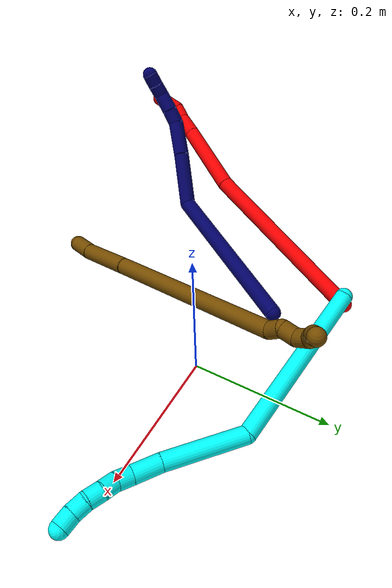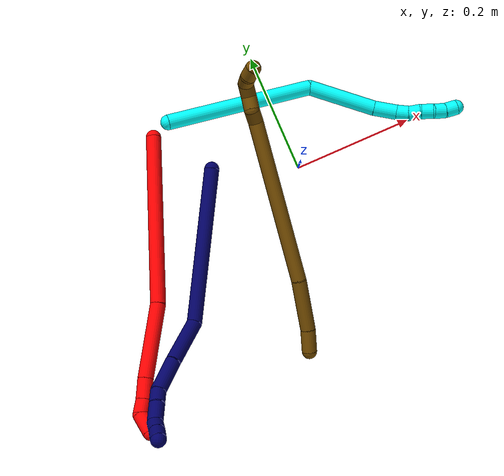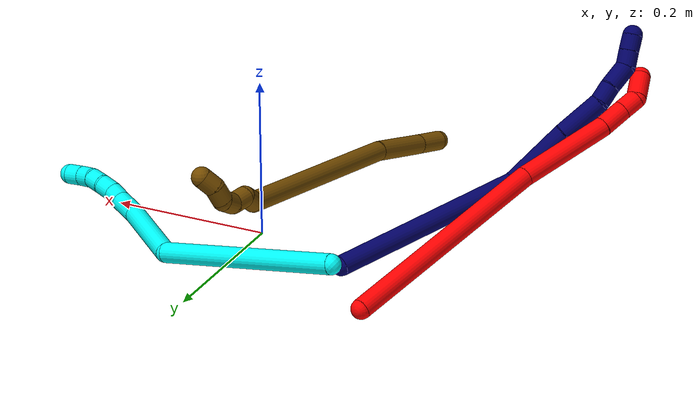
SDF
<sdf version="1.7">
 <world name="default">
  <model name="2">
   <static>0</static>
   <link name="2">
    <collision name="collision-cylinder-e_1_1_4">
     <pose>-0.022684 -0.051345 0.1313 0.372766 -0.159534 -0.030145</pose>
     <geometry><cylinder><radius>0.0125</radius><length>0.28559</length></cylinder></geometry>
     <surface>
      <friction><ode><mu>1.16</mu><mu2>1.16</mu2><slip1>0</slip1><slip2>0</slip2></ode></friction>
      <contact><ode><kp>1e+06</kp><kd>1</kd><max_vel>0</max_vel><min_depth>0.001</min_depth></ode></contact>
     </surface>
    </collision>
    <visual name="visual-cylinder-e_1_1_4">
     <pose>-0.022684 -0.051345 0.1313 0.372766 -0.159534 -0.030145</pose>
     <geometry><cylinder><radius>0.0125</radius><length>0.28559</length></cylinder></geometry>
     <material><ambient>1 0 0 1</ambient></material>
    </visual>
    <collision name="collision-cylinder-e_2_4_5">
     <pose>-0.051687 -0.134677 0.314356 0.553578 -0.103472 -0.029419</pose>
     <geometry><cylinder><radius>0.0125</radius><length>0.122342</length></cylinder></geometry>
     <surface>
      <friction><ode><mu>1.16</mu><mu2>1.16</mu2><slip1>0</slip1><slip2>0</slip2></ode></friction>
      <contact><ode><kp>1e+06</kp><kd>1</kd><max_vel>0</max_vel><min_depth>0.001</min_depth></ode></contact>
     </surface>
    </collision>
    <visual name="visual-cylinder-e_2_4_5">
     <pose>-0.051687 -0.134677 0.314356 0.553578 -0.103472 -0.029419</pose>
     <geometry><cylinder><radius>0.0125</radius><length>0.122342</length></cylinder></geometry>
     <material><ambient>1 0 0 1</ambient></material>
    </visual>
    <collision name="collision-cylinder-e_3_5_6">
     <pose>-0.061734 -0.174829 0.380631 0.512264 -0.220252 -0.057899</pose>
     <geometry><cylinder><radius>0.0125</radius><length>0.034137</length></cylinder></geometry>
     <surface>
      <friction><ode><mu>1.16</mu><mu2>1.16</mu2><slip1>0</slip1><slip2>0</slip2></ode></friction>
      <contact><ode><kp>1e+06</kp><kd>1</kd><max_vel>0</max_vel><min_depth>0.001</min_depth></ode></contact>
     </surface>
    </collision>
    <visual name="visual-cylinder-e_3_5_6">
     <pose>-0.061734 -0.174829 0.380631 0.512264 -0.220252 -0.057899</pose>
     <geometry><cylinder><radius>0.0125</radius><length>0.034137</length></cylinder></geometry>
     <material><ambient>1 0 0 1</ambient></material>
    </visual>
    <collision name="collision-cylinder-e_4_6_7">
     <pose>-0.06829 -0.189865 0.404295 0.644454 -0.242257 -0.081234</pose>
     <geometry><cylinder><radius>0.0125</radius><length>0.023568</length></cylinder></geometry>
     <surface>
      <friction><ode><mu>1.16</mu><mu2>1.16</mu2><slip1>0</slip1><slip2>0</slip2></ode></friction>
      <contact><ode><kp>1e+06</kp><kd>1</kd><max_vel>0</max_vel><min_depth>0.001</min_depth></ode></contact>
     </surface>
    </collision>
    <visual name="visual-cylinder-e_4_6_7">
     <pose>-0.06829 -0.189865 0.404295 0.644454 -0.242257 -0.081234</pose>
     <geometry><cylinder><radius>0.0125</radius><length>0.023568</length></cylinder></geometry>
     <material><ambient>1 0 0 1</ambient></material>
    </visual>
    <collision name="collision-cylinder-e_5_7_2">
     <pose>-0.080766 -0.19669 0.427656 -0.003387 -0.596364 0.001041</pose>
     <geometry><cylinder><radius>0.0125</radius><length>0.034362</length></cylinder></geometry>
     <surface>
      <friction><ode><mu>1.16</mu><mu2>1.16</mu2><slip1>0</slip1><slip2>0</slip2></ode></friction>
      <contact><ode><kp>1e+06</kp><kd>1</kd><max_vel>0</max_vel><min_depth>0.001</min_depth></ode></contact>
     </surface>
    </collision>
    <visual name="visual-cylinder-e_5_7_2">
     <pose>-0.080766 -0.19669 0.427656 -0.003387 -0.596364 0.001041</pose>
     <geometry><cylinder><radius>0.0125</radius><length>0.034362</length></cylinder></geometry>
     <material><ambient>1 0 0 1</ambient></material>
    </visual>
    <collision name="collision-sphere-2">
     <pose>-0.090416 -0.196642 0.441871 0 -0 0</pose>
     <geometry><sphere><radius>0.0125</radius></sphere></geometry>
     <surface>
      <friction><ode><mu>1.16</mu><mu2>1.16</mu2><slip1>0</slip1><slip2>0</slip2></ode></friction>
      <contact><ode><kp>1e+06</kp><kd>1</kd><max_vel>0</max_vel><min_depth>0.001</min_depth></ode></contact>
     </surface>
    </collision>
    <visual name="visual-sphere-2">
     <pose>-0.090416 -0.196642 0.441871 0 -0 0</pose>
     <geometry><sphere><radius>0.0125</radius></sphere></geometry>
     <material><ambient>1 0 0 1</ambient></material>
    </visual>
    <collision name="collision-sphere-7">
     <pose>-0.071117 -0.196738 0.41344 0 -0 0</pose>
     <geometry><sphere><radius>0.0125</radius></sphere></geometry>
     <surface>
      <friction><ode><mu>1.16</mu><mu2>1.16</mu2><slip1>0</slip1><slip2>0</slip2></ode></friction>
      <contact><ode><kp>1e+06</kp><kd>1</kd><max_vel>0</max_vel><min_depth>0.001</min_depth></ode></contact>
     </surface>
    </collision>
    <visual name="visual-sphere-7">
     <pose>-0.071117 -0.196738 0.41344 0 -0 0</pose>
     <geometry><sphere><radius>0.0125</radius></sphere></geometry>
     <material><ambient>1 0 0 1</ambient></material>
    </visual>
    <collision name="collision-sphere-6">
     <pose>-0.065463 -0.182993 0.395149 0 -0 0</pose>
     <geometry><sphere><radius>0.0125</radius></sphere></geometry>
     <surface>
      <friction><ode><mu>1.16</mu><mu2>1.16</mu2><slip1>0</slip1><slip2>0</slip2></ode></friction>
      <contact><ode><kp>1e+06</kp><kd>1</kd><max_vel>0</max_vel><min_depth>0.001</min_depth></ode></contact>
     </surface>
    </collision>
    <visual name="visual-sphere-6">
     <pose>-0.065463 -0.182993 0.395149 0 -0 0</pose>
     <geometry><sphere><radius>0.0125</radius></sphere></geometry>
     <material><ambient>1 0 0 1</ambient></material>
    </visual>
    <collision name="collision-sphere-5">
     <pose>-0.058005 -0.166665 0.366113 0 -0 0</pose>
     <geometry><sphere><radius>0.0125</radius></sphere></geometry>
     <surface>
      <friction><ode><mu>1.16</mu><mu2>1.16</mu2><slip1>0</slip1><slip2>0</slip2></ode></friction>
      <contact><ode><kp>1e+06</kp><kd>1</kd><max_vel>0</max_vel><min_depth>0.001</min_depth></ode></contact>
     </surface>
    </collision>
    <visual name="visual-sphere-5">
     <pose>-0.058005 -0.166665 0.366113 0 -0 0</pose>
     <geometry><sphere><radius>0.0125</radius></sphere></geometry>
     <material><ambient>1 0 0 1</ambient></material>
    </visual>
    <collision name="collision-sphere-1">
     <geometry><sphere><radius>0.0125</radius></sphere></geometry>
     <surface>
      <friction><ode><mu>1.16</mu><mu2>1.16</mu2><slip1>0</slip1><slip2>0</slip2></ode></friction>
      <contact><ode><kp>1e+06</kp><kd>1</kd><max_vel>0</max_vel><min_depth>0.001</min_depth></ode></contact>
     </surface>
    </collision>
    <visual name="visual-sphere-1">
     <geometry><sphere><radius>0.0125</radius></sphere></geometry>
     <material><ambient>1 0 0 1</ambient></material>
    </visual>
    <collision name="collision-sphere-4">
     <pose>-0.045368 -0.102689 0.262599 0 -0 0</pose>
     <geometry><sphere><radius>0.0125</radius></sphere></geometry>
     <surface>
      <friction><ode><mu>1.16</mu><mu2>1.16</mu2><slip1>0</slip1><slip2>0</slip2></ode></friction>
      <contact><ode><kp>1e+06</kp><kd>1</kd><max_vel>0</max_vel><min_depth>0.001</min_depth></ode></contact>
     </surface>
    </collision>
    <visual name="visual-sphere-4">
     <pose>-0.045368 -0.102689 0.262599 0 -0 0</pose>
     <geometry><sphere><radius>0.0125</radius></sphere></geometry>
     <material><ambient>1 0 0 1</ambient></material>
    </visual>
    <inertial>
     <pose>-0.038588 -0.096684 0.226349 0 -0 0</pose>
     <mass>0.5</mass>
     <inertia>
      <ixx>0.002023</ixx>
      <ixy>0</ixy>
      <ixz>0</ixz>
      <iyy>0.001887</iyy>
      <iyz>0</iyz>
      <izz>0.001153</izz>
     </inertia>
    </inertial>
   </link>
   <pose>-0.202894 0.144289 0.011514 -1.64848 1.08418 2.97499</pose>
  </model>
  <model name="3">
   <static>0</static>
   <link name="3">
    <collision name="collision-cylinder-e_1_1_4">
     <pose>0.096482 -0.000642 0.076284 0.008417 0.901764 0.004075</pose>
     <geometry><cylinder><radius>0.0125</radius><length>0.245995</length></cylinder></geometry>
     <surface>
      <friction><ode><mu>1.16</mu><mu2>1.16</mu2><slip1>0</slip1><slip2>0</slip2></ode></friction>
      <contact><ode><kp>1e+06</kp><kd>1</kd><max_vel>0</max_vel><min_depth>0.001</min_depth></ode></contact>
     </surface>
    </collision>
    <visual name="visual-cylinder-e_1_1_4">
     <pose>0.096482 -0.000642 0.076284 0.008417 0.901764 0.004075</pose>
     <geometry><cylinder><radius>0.0125</radius><length>0.245995</length></cylinder></geometry>
     <material><ambient>0.003922 1 0.996078 1</ambient></material>
    </visual>
    <collision name="collision-cylinder-e_2_4_5">
     <pose>0.226203 -0.033844 0.185129 0.785362 0.625242 0.266168</pose>
     <geometry><cylinder><radius>0.0125</radius><length>0.113583</length></cylinder></geometry>
     <surface>
      <friction><ode><mu>1.16</mu><mu2>1.16</mu2><slip1>0</slip1><slip2>0</slip2></ode></friction>
      <contact><ode><kp>1e+06</kp><kd>1</kd><max_vel>0</max_vel><min_depth>0.001</min_depth></ode></contact>
     </surface>
    </collision>
    <visual name="visual-cylinder-e_2_4_5">
     <pose>0.226203 -0.033844 0.185129 0.785362 0.625242 0.266168</pose>
     <geometry><cylinder><radius>0.0125</radius><length>0.113583</length></cylinder></geometry>
     <material><ambient>0.003922 1 0.996078 1</ambient></material>
    </visual>
    <collision name="collision-cylinder-e_3_5_6">
     <pose>0.270603 -0.075603 0.230604 0.619013 0.613336 0.201836</pose>
     <geometry><cylinder><radius>0.0125</radius><length>0.038778</length></cylinder></geometry>
     <surface>
      <friction><ode><mu>1.16</mu><mu2>1.16</mu2><slip1>0</slip1><slip2>0</slip2></ode></friction>
      <contact><ode><kp>1e+06</kp><kd>1</kd><max_vel>0</max_vel><min_depth>0.001</min_depth></ode></contact>
     </surface>
    </collision>
    <visual name="visual-cylinder-e_3_5_6">
     <pose>0.270603 -0.075603 0.230604 0.619013 0.613336 0.201836</pose>
     <geometry><cylinder><radius>0.0125</radius><length>0.038778</length></cylinder></geometry>
     <material><ambient>0.003922 1 0.996078 1</ambient></material>
    </visual>
    <collision name="collision-cylinder-e_4_6_7">
     <pose>0.286749 -0.089472 0.251721 0.517448 0.485894 0.130998</pose>
     <geometry><cylinder><radius>0.0125</radius><length>0.02135</length></cylinder></geometry>
     <surface>
      <friction><ode><mu>1.16</mu><mu2>1.16</mu2><slip1>0</slip1><slip2>0</slip2></ode></friction>
      <contact><ode><kp>1e+06</kp><kd>1</kd><max_vel>0</max_vel><min_depth>0.001</min_depth></ode></contact>
     </surface>
    </collision>
    <visual name="visual-cylinder-e_4_6_7">
     <pose>0.286749 -0.089472 0.251721 0.517448 0.485894 0.130998</pose>
     <geometry><cylinder><radius>0.0125</radius><length>0.02135</length></cylinder></geometry>
     <material><ambient>0.003922 1 0.996078 1</ambient></material>
    </visual>
    <collision name="collision-cylinder-e_5_7_8">
     <pose>0.29616 -0.096088 0.268713 0.218029 0.456961 0.050892</pose>
     <geometry><cylinder><radius>0.0125</radius><length>0.02006</length></cylinder></geometry>
     <surface>
      <friction><ode><mu>1.16</mu><mu2>1.16</mu2><slip1>0</slip1><slip2>0</slip2></ode></friction>
      <contact><ode><kp>1e+06</kp><kd>1</kd><max_vel>0</max_vel><min_depth>0.001</min_depth></ode></contact>
     </surface>
    </collision>
    <visual name="visual-cylinder-e_5_7_8">
     <pose>0.29616 -0.096088 0.268713 0.218029 0.456961 0.050892</pose>
     <geometry><cylinder><radius>0.0125</radius><length>0.02006</length></cylinder></geometry>
     <material><ambient>0.003922 1 0.996078 1</ambient></material>
    </visual>
    <collision name="collision-cylinder-e_6_8_9">
     <pose>0.306447 -0.101064 0.285089 0.379769 0.622323 0.123469</pose>
     <geometry><cylinder><radius>0.0125</radius><length>0.020112</length></cylinder></geometry>
     <surface>
      <friction><ode><mu>1.16</mu><mu2>1.16</mu2><slip1>0</slip1><slip2>0</slip2></ode></friction>
      <contact><ode><kp>1e+06</kp><kd>1</kd><max_vel>0</max_vel><min_depth>0.001</min_depth></ode></contact>
     </surface>
    </collision>
    <visual name="visual-cylinder-e_6_8_9">
     <pose>0.306447 -0.101064 0.285089 0.379769 0.622323 0.123469</pose>
     <geometry><cylinder><radius>0.0125</radius><length>0.020112</length></cylinder></geometry>
     <material><ambient>0.003922 1 0.996078 1</ambient></material>
    </visual>
    <collision name="collision-cylinder-e_7_9_10">
     <pose>0.320039 -0.106099 0.298788 0.317196 0.876863 0.149702</pose>
     <geometry><cylinder><radius>0.0125</radius><length>0.020112</length></cylinder></geometry>
     <surface>
      <friction><ode><mu>1.16</mu><mu2>1.16</mu2><slip1>0</slip1><slip2>0</slip2></ode></friction>
      <contact><ode><kp>1e+06</kp><kd>1</kd><max_vel>0</max_vel><min_depth>0.001</min_depth></ode></contact>
     </surface>
    </collision>
    <visual name="visual-cylinder-e_7_9_10">
     <pose>0.320039 -0.106099 0.298788 0.317196 0.876863 0.149702</pose>
     <geometry><cylinder><radius>0.0125</radius><length>0.020112</length></cylinder></geometry>
     <material><ambient>0.003922 1 0.996078 1</ambient></material>
    </visual>
    <collision name="collision-cylinder-e_8_10_2">
     <pose>0.334935 -0.108042 0.311881 -0.0091 0.798374 -0.003839</pose>
     <geometry><cylinder><radius>0.0125</radius><length>0.02001</length></cylinder></geometry>
     <surface>
      <friction><ode><mu>1.16</mu><mu2>1.16</mu2><slip1>0</slip1><slip2>0</slip2></ode></friction>
      <contact><ode><kp>1e+06</kp><kd>1</kd><max_vel>0</max_vel><min_depth>0.001</min_depth></ode></contact>
     </surface>
    </collision>
    <visual name="visual-cylinder-e_8_10_2">
     <pose>0.334935 -0.108042 0.311881 -0.0091 0.798374 -0.003839</pose>
     <geometry><cylinder><radius>0.0125</radius><length>0.02001</length></cylinder></geometry>
     <material><ambient>0.003922 1 0.996078 1</ambient></material>
    </visual>
    <collision name="collision-sphere-2">
     <pose>0.342101 -0.107978 0.318863 0 -0 0</pose>
     <geometry><sphere><radius>0.0125</radius></sphere></geometry>
     <surface>
      <friction><ode><mu>1.16</mu><mu2>1.16</mu2><slip1>0</slip1><slip2>0</slip2></ode></friction>
      <contact><ode><kp>1e+06</kp><kd>1</kd><max_vel>0</max_vel><min_depth>0.001</min_depth></ode></contact>
     </surface>
    </collision>
    <visual name="visual-sphere-2">
     <pose>0.342101 -0.107978 0.318863 0 -0 0</pose>
     <geometry><sphere><radius>0.0125</radius></sphere></geometry>
     <material><ambient>0.003922 1 0.996078 1</ambient></material>
    </visual>
    <collision name="collision-sphere-10">
     <pose>0.32777 -0.108105 0.304899 0 -0 0</pose>
     <geometry><sphere><radius>0.0125</radius></sphere></geometry>
     <surface>
      <friction><ode><mu>1.16</mu><mu2>1.16</mu2><slip1>0</slip1><slip2>0</slip2></ode></friction>
      <contact><ode><kp>1e+06</kp><kd>1</kd><max_vel>0</max_vel><min_depth>0.001</min_depth></ode></contact>
     </surface>
    </collision>
    <visual name="visual-sphere-10">
     <pose>0.32777 -0.108105 0.304899 0 -0 0</pose>
     <geometry><sphere><radius>0.0125</radius></sphere></geometry>
     <material><ambient>0.003922 1 0.996078 1</ambient></material>
    </visual>
    <collision name="collision-sphere-9">
     <pose>0.312309 -0.104093 0.292678 0 -0 0</pose>
     <geometry><sphere><radius>0.0125</radius></sphere></geometry>
     <surface>
      <friction><ode><mu>1.16</mu><mu2>1.16</mu2><slip1>0</slip1><slip2>0</slip2></ode></friction>
      <contact><ode><kp>1e+06</kp><kd>1</kd><max_vel>0</max_vel><min_depth>0.001</min_depth></ode></contact>
     </surface>
    </collision>
    <visual name="visual-sphere-9">
     <pose>0.312309 -0.104093 0.292678 0 -0 0</pose>
     <geometry><sphere><radius>0.0125</radius></sphere></geometry>
     <material><ambient>0.003922 1 0.996078 1</ambient></material>
    </visual>
    <collision name="collision-sphere-4">
     <pose>0.192964 -0.001284 0.152567 0 -0 0</pose>
     <geometry><sphere><radius>0.0125</radius></sphere></geometry>
     <surface>
      <friction><ode><mu>1.16</mu><mu2>1.16</mu2><slip1>0</slip1><slip2>0</slip2></ode></friction>
      <contact><ode><kp>1e+06</kp><kd>1</kd><max_vel>0</max_vel><min_depth>0.001</min_depth></ode></contact>
     </surface>
    </collision>
    <visual name="visual-sphere-4">
     <pose>0.192964 -0.001284 0.152567 0 -0 0</pose>
     <geometry><sphere><radius>0.0125</radius></sphere></geometry>
     <material><ambient>0.003922 1 0.996078 1</ambient></material>
    </visual>
    <collision name="collision-sphere-1">
     <geometry><sphere><radius>0.0125</radius></sphere></geometry>
     <surface>
      <friction><ode><mu>1.16</mu><mu2>1.16</mu2><slip1>0</slip1><slip2>0</slip2></ode></friction>
      <contact><ode><kp>1e+06</kp><kd>1</kd><max_vel>0</max_vel><min_depth>0.001</min_depth></ode></contact>
     </surface>
    </collision>
    <visual name="visual-sphere-1">
     <geometry><sphere><radius>0.0125</radius></sphere></geometry>
     <material><ambient>0.003922 1 0.996078 1</ambient></material>
    </visual>
    <collision name="collision-sphere-8">
     <pose>0.300585 -0.098035 0.2775 0 -0 0</pose>
     <geometry><sphere><radius>0.0125</radius></sphere></geometry>
     <surface>
      <friction><ode><mu>1.16</mu><mu2>1.16</mu2><slip1>0</slip1><slip2>0</slip2></ode></friction>
      <contact><ode><kp>1e+06</kp><kd>1</kd><max_vel>0</max_vel><min_depth>0.001</min_depth></ode></contact>
     </surface>
    </collision>
    <visual name="visual-sphere-8">
     <pose>0.300585 -0.098035 0.2775 0 -0 0</pose>
     <geometry><sphere><radius>0.0125</radius></sphere></geometry>
     <material><ambient>0.003922 1 0.996078 1</ambient></material>
    </visual>
    <collision name="collision-sphere-5">
     <pose>0.259443 -0.066403 0.217691 0 -0 0</pose>
     <geometry><sphere><radius>0.0125</radius></sphere></geometry>
     <surface>
      <friction><ode><mu>1.16</mu><mu2>1.16</mu2><slip1>0</slip1><slip2>0</slip2></ode></friction>
      <contact><ode><kp>1e+06</kp><kd>1</kd><max_vel>0</max_vel><min_depth>0.001</min_depth></ode></contact>
     </surface>
    </collision>
    <visual name="visual-sphere-5">
     <pose>0.259443 -0.066403 0.217691 0 -0 0</pose>
     <geometry><sphere><radius>0.0125</radius></sphere></geometry>
     <material><ambient>0.003922 1 0.996078 1</ambient></material>
    </visual>
    <collision name="collision-sphere-6">
     <pose>0.281764 -0.084803 0.243518 0 -0 0</pose>
     <geometry><sphere><radius>0.0125</radius></sphere></geometry>
     <surface>
      <friction><ode><mu>1.16</mu><mu2>1.16</mu2><slip1>0</slip1><slip2>0</slip2></ode></friction>
      <contact><ode><kp>1e+06</kp><kd>1</kd><max_vel>0</max_vel><min_depth>0.001</min_depth></ode></contact>
     </surface>
    </collision>
    <visual name="visual-sphere-6">
     <pose>0.281764 -0.084803 0.243518 0 -0 0</pose>
     <geometry><sphere><radius>0.0125</radius></sphere></geometry>
     <material><ambient>0.003922 1 0.996078 1</ambient></material>
    </visual>
    <collision name="collision-sphere-7">
     <pose>0.291734 -0.094141 0.259925 0 -0 0</pose>
     <geometry><sphere><radius>0.0125</radius></sphere></geometry>
     <surface>
      <friction><ode><mu>1.16</mu><mu2>1.16</mu2><slip1>0</slip1><slip2>0</slip2></ode></friction>
      <contact><ode><kp>1e+06</kp><kd>1</kd><max_vel>0</max_vel><min_depth>0.001</min_depth></ode></contact>
     </surface>
    </collision>
    <visual name="visual-sphere-7">
     <pose>0.291734 -0.094141 0.259925 0 -0 0</pose>
     <geometry><sphere><radius>0.0125</radius></sphere></geometry>
     <material><ambient>0.003922 1 0.996078 1</ambient></material>
    </visual>
    <inertial>
     <pose>0.182571 -0.0342 0.154967 0 -0 0</pose>
     <mass>0.5</mass>
     <inertia>
      <ixx>0.000944</ixx>
      <ixy>0</ixy>
      <ixz>0</ixz>
      <iyy>0.001386</iyy>
      <iyz>0</iyz>
      <izz>-0.000954</izz>
     </inertia>
    </inertial>
   </link>
   <pose>-0.167415 0.150552 0.064113 -0.250543 0.872707 -0.298159</pose>
  </model>
  <model name="7">
   <static>0</static>
   <link name="7">
    <collision name="collision-cylinder-e_1_1_4">
     <pose>-0.003367 0.001512 0.129597 -0.011663 -0.025973 0.000151</pose>
     <geometry><cylinder><radius>0.0125</radius><length>0.259299</length></cylinder></geometry>
     <surface>
      <friction><ode><mu>1.16</mu><mu2>1.16</mu2><slip1>0</slip1><slip2>0</slip2></ode></friction>
      <contact><ode><kp>1e+06</kp><kd>1</kd><max_vel>0</max_vel><min_depth>0.001</min_depth></ode></contact>
     </surface>
    </collision>
    <visual name="visual-cylinder-e_1_1_4">
     <pose>-0.003367 0.001512 0.129597 -0.011663 -0.025973 0.000151</pose>
     <geometry><cylinder><radius>0.0125</radius><length>0.259299</length></cylinder></geometry>
     <material><ambient>0.003922 0 0.403922 1</ambient></material>
    </visual>
    <collision name="collision-cylinder-e_2_4_5">
     <pose>-0.018588 -0.021654 0.29294 0.631401 -0.276287 -0.090758</pose>
     <geometry><cylinder><radius>0.0125</radius><length>0.086909</length></cylinder></geometry>
     <surface>
      <friction><ode><mu>1.16</mu><mu2>1.16</mu2><slip1>0</slip1><slip2>0</slip2></ode></friction>
      <contact><ode><kp>1e+06</kp><kd>1</kd><max_vel>0</max_vel><min_depth>0.001</min_depth></ode></contact>
     </surface>
    </collision>
    <visual name="visual-cylinder-e_2_4_5">
     <pose>-0.018588 -0.021654 0.29294 0.631401 -0.276287 -0.090758</pose>
     <geometry><cylinder><radius>0.0125</radius><length>0.086909</length></cylinder></geometry>
     <material><ambient>0.003922 0 0.403922 1</ambient></material>
    </visual>
    <collision name="collision-cylinder-e_3_5_6">
     <pose>-0.036848 -0.061151 0.35077 0.551631 -0.222774 -0.063292</pose>
     <geometry><cylinder><radius>0.0125</radius><length>0.057988</length></cylinder></geometry>
     <surface>
      <friction><ode><mu>1.16</mu><mu2>1.16</mu2><slip1>0</slip1><slip2>0</slip2></ode></friction>
      <contact><ode><kp>1e+06</kp><kd>1</kd><max_vel>0</max_vel><min_depth>0.001</min_depth></ode></contact>
     </surface>
    </collision>
    <visual name="visual-cylinder-e_3_5_6">
     <pose>-0.036848 -0.061151 0.35077 0.551631 -0.222774 -0.063292</pose>
     <geometry><cylinder><radius>0.0125</radius><length>0.057988</length></cylinder></geometry>
     <material><ambient>0.003922 0 0.403922 1</ambient></material>
    </visual>
    <collision name="collision-cylinder-e_4_6_7">
     <pose>-0.049164 -0.07975 0.384415 0.37633 -0.521751 -0.10158</pose>
     <geometry><cylinder><radius>0.0125</radius><length>0.023718</length></cylinder></geometry>
     <surface>
      <friction><ode><mu>1.16</mu><mu2>1.16</mu2><slip1>0</slip1><slip2>0</slip2></ode></friction>
      <contact><ode><kp>1e+06</kp><kd>1</kd><max_vel>0</max_vel><min_depth>0.001</min_depth></ode></contact>
     </surface>
    </collision>
    <visual name="visual-cylinder-e_4_6_7">
     <pose>-0.049164 -0.07975 0.384415 0.37633 -0.521751 -0.10158</pose>
     <geometry><cylinder><radius>0.0125</radius><length>0.023718</length></cylinder></geometry>
     <material><ambient>0.003922 0 0.403922 1</ambient></material>
    </visual>
    <collision name="collision-cylinder-e_5_7_8">
     <pose>-0.061614 -0.087565 0.407863 0.282916 -0.424676 -0.061384</pose>
     <geometry><cylinder><radius>0.0125</radius><length>0.031741</length></cylinder></geometry>
     <surface>
      <friction><ode><mu>1.16</mu><mu2>1.16</mu2><slip1>0</slip1><slip2>0</slip2></ode></friction>
      <contact><ode><kp>1e+06</kp><kd>1</kd><max_vel>0</max_vel><min_depth>0.001</min_depth></ode></contact>
     </surface>
    </collision>
    <visual name="visual-cylinder-e_5_7_8">
     <pose>-0.061614 -0.087565 0.407863 0.282916 -0.424676 -0.061384</pose>
     <geometry><cylinder><radius>0.0125</radius><length>0.031741</length></cylinder></geometry>
     <material><ambient>0.003922 0 0.403922 1</ambient></material>
    </visual>
    <collision name="collision-cylinder-e_6_8_9">
     <pose>-0.07602 -0.094399 0.427369 0.461763 -0.897251 -0.225352</pose>
     <geometry><cylinder><radius>0.0125</radius><length>0.020131</length></cylinder></geometry>
     <surface>
      <friction><ode><mu>1.16</mu><mu2>1.16</mu2><slip1>0</slip1><slip2>0</slip2></ode></friction>
      <contact><ode><kp>1e+06</kp><kd>1</kd><max_vel>0</max_vel><min_depth>0.001</min_depth></ode></contact>
     </surface>
    </collision>
    <visual name="visual-cylinder-e_6_8_9">
     <pose>-0.07602 -0.094399 0.427369 0.461763 -0.897251 -0.225352</pose>
     <geometry><cylinder><radius>0.0125</radius><length>0.020131</length></cylinder></geometry>
     <material><ambient>0.003922 0 0.403922 1</ambient></material>
    </visual>
    <collision name="collision-cylinder-e_7_9_2">
     <pose>-0.09153 -0.10038 0.438786 0.502414 -0.857561 -0.233565</pose>
     <geometry><cylinder><radius>0.0125</radius><length>0.020213</length></cylinder></geometry>
     <surface>
      <friction><ode><mu>1.16</mu><mu2>1.16</mu2><slip1>0</slip1><slip2>0</slip2></ode></friction>
      <contact><ode><kp>1e+06</kp><kd>1</kd><max_vel>0</max_vel><min_depth>0.001</min_depth></ode></contact>
     </surface>
    </collision>
    <visual name="visual-cylinder-e_7_9_2">
     <pose>-0.09153 -0.10038 0.438786 0.502414 -0.857561 -0.233565</pose>
     <geometry><cylinder><radius>0.0125</radius><length>0.020213</length></cylinder></geometry>
     <material><ambient>0.003922 0 0.403922 1</ambient></material>
    </visual>
    <collision name="collision-sphere-2">
     <pose>-0.099174 -0.103565 0.444581 0 -0 0</pose>
     <geometry><sphere><radius>0.0125</radius></sphere></geometry>
     <surface>
      <friction><ode><mu>1.16</mu><mu2>1.16</mu2><slip1>0</slip1><slip2>0</slip2></ode></friction>
      <contact><ode><kp>1e+06</kp><kd>1</kd><max_vel>0</max_vel><min_depth>0.001</min_depth></ode></contact>
     </surface>
    </collision>
    <visual name="visual-sphere-2">
     <pose>-0.099174 -0.103565 0.444581 0 -0 0</pose>
     <geometry><sphere><radius>0.0125</radius></sphere></geometry>
     <material><ambient>0.003922 0 0.403922 1</ambient></material>
    </visual>
    <collision name="collision-sphere-9">
     <pose>-0.083887 -0.097196 0.43299 0 -0 0</pose>
     <geometry><sphere><radius>0.0125</radius></sphere></geometry>
     <surface>
      <friction><ode><mu>1.16</mu><mu2>1.16</mu2><slip1>0</slip1><slip2>0</slip2></ode></friction>
      <contact><ode><kp>1e+06</kp><kd>1</kd><max_vel>0</max_vel><min_depth>0.001</min_depth></ode></contact>
     </surface>
    </collision>
    <visual name="visual-sphere-9">
     <pose>-0.083887 -0.097196 0.43299 0 -0 0</pose>
     <geometry><sphere><radius>0.0125</radius></sphere></geometry>
     <material><ambient>0.003922 0 0.403922 1</ambient></material>
    </visual>
    <collision name="collision-sphere-4">
     <pose>-0.006734 0.003023 0.259194 0 -0 0</pose>
     <geometry><sphere><radius>0.0125</radius></sphere></geometry>
     <surface>
      <friction><ode><mu>1.16</mu><mu2>1.16</mu2><slip1>0</slip1><slip2>0</slip2></ode></friction>
      <contact><ode><kp>1e+06</kp><kd>1</kd><max_vel>0</max_vel><min_depth>0.001</min_depth></ode></contact>
     </surface>
    </collision>
    <visual name="visual-sphere-4">
     <pose>-0.006734 0.003023 0.259194 0 -0 0</pose>
     <geometry><sphere><radius>0.0125</radius></sphere></geometry>
     <material><ambient>0.003922 0 0.403922 1</ambient></material>
    </visual>
    <collision name="collision-sphere-1">
     <geometry><sphere><radius>0.0125</radius></sphere></geometry>
     <surface>
      <friction><ode><mu>1.16</mu><mu2>1.16</mu2><slip1>0</slip1><slip2>0</slip2></ode></friction>
      <contact><ode><kp>1e+06</kp><kd>1</kd><max_vel>0</max_vel><min_depth>0.001</min_depth></ode></contact>
     </surface>
    </collision>
    <visual name="visual-sphere-1">
     <geometry><sphere><radius>0.0125</radius></sphere></geometry>
     <material><ambient>0.003922 0 0.403922 1</ambient></material>
    </visual>
    <collision name="collision-sphere-8">
     <pose>-0.068153 -0.091602 0.421748 0 -0 0</pose>
     <geometry><sphere><radius>0.0125</radius></sphere></geometry>
     <surface>
      <friction><ode><mu>1.16</mu><mu2>1.16</mu2><slip1>0</slip1><slip2>0</slip2></ode></friction>
      <contact><ode><kp>1e+06</kp><kd>1</kd><max_vel>0</max_vel><min_depth>0.001</min_depth></ode></contact>
     </surface>
    </collision>
    <visual name="visual-sphere-8">
     <pose>-0.068153 -0.091602 0.421748 0 -0 0</pose>
     <geometry><sphere><radius>0.0125</radius></sphere></geometry>
     <material><ambient>0.003922 0 0.403922 1</ambient></material>
    </visual>
    <collision name="collision-sphere-5">
     <pose>-0.030442 -0.046332 0.326687 0 -0 0</pose>
     <geometry><sphere><radius>0.0125</radius></sphere></geometry>
     <surface>
      <friction><ode><mu>1.16</mu><mu2>1.16</mu2><slip1>0</slip1><slip2>0</slip2></ode></friction>
      <contact><ode><kp>1e+06</kp><kd>1</kd><max_vel>0</max_vel><min_depth>0.001</min_depth></ode></contact>
     </surface>
    </collision>
    <visual name="visual-sphere-5">
     <pose>-0.030442 -0.046332 0.326687 0 -0 0</pose>
     <geometry><sphere><radius>0.0125</radius></sphere></geometry>
     <material><ambient>0.003922 0 0.403922 1</ambient></material>
    </visual>
    <collision name="collision-sphere-6">
     <pose>-0.043253 -0.075971 0.374853 0 -0 0</pose>
     <geometry><sphere><radius>0.0125</radius></sphere></geometry>
     <surface>
      <friction><ode><mu>1.16</mu><mu2>1.16</mu2><slip1>0</slip1><slip2>0</slip2></ode></friction>
      <contact><ode><kp>1e+06</kp><kd>1</kd><max_vel>0</max_vel><min_depth>0.001</min_depth></ode></contact>
     </surface>
    </collision>
    <visual name="visual-sphere-6">
     <pose>-0.043253 -0.075971 0.374853 0 -0 0</pose>
     <geometry><sphere><radius>0.0125</radius></sphere></geometry>
     <material><ambient>0.003922 0 0.403922 1</ambient></material>
    </visual>
    <collision name="collision-sphere-7">
     <pose>-0.055075 -0.083528 0.393977 0 -0 0</pose>
     <geometry><sphere><radius>0.0125</radius></sphere></geometry>
     <surface>
      <friction><ode><mu>1.16</mu><mu2>1.16</mu2><slip1>0</slip1><slip2>0</slip2></ode></friction>
      <contact><ode><kp>1e+06</kp><kd>1</kd><max_vel>0</max_vel><min_depth>0.001</min_depth></ode></contact>
     </surface>
    </collision>
    <visual name="visual-sphere-7">
     <pose>-0.055075 -0.083528 0.393977 0 -0 0</pose>
     <geometry><sphere><radius>0.0125</radius></sphere></geometry>
     <material><ambient>0.003922 0 0.403922 1</ambient></material>
    </visual>
    <inertial>
     <pose>-0.022255 -0.027273 0.237881 0 -0 0</pose>
     <mass>0.5</mass>
     <inertia>
      <ixx>0.001529</ixx>
      <ixy>0</ixy>
      <ixz>0</ixz>
      <iyy>0.00152</iyy>
      <iyz>0</iyz>
      <izz>0.000125</izz>
     </inertia>
    </inertial>
   </link>
   <pose>-0.134881 0.056171 0.011499 -1.35029 0.844822 2.76592</pose>
  </model>
  <model name="12">
   <static>0</static>
   <link name="12">
    <collision name="collision-cylinder-e_1_1_4">
     <pose>0.004065 0.018212 0.003807 -1.36475 0.215089 -0.175009</pose>
     <geometry><cylinder><radius>0.0125</radius><length>0.038088</length></cylinder></geometry>
     <surface>
      <friction><ode><mu>1.16</mu><mu2>1.16</mu2><slip1>0</slip1><slip2>0</slip2></ode></friction>
      <contact><ode><kp>1e+06</kp><kd>1</kd><max_vel>0</max_vel><min_depth>0.001</min_depth></ode></contact>
     </surface>
    </collision>
    <visual name="visual-cylinder-e_1_1_4">
     <pose>0.004065 0.018212 0.003807 -1.36475 0.215089 -0.175009</pose>
     <geometry><cylinder><radius>0.0125</radius><length>0.038088</length></cylinder></geometry>
     <material><ambient>0.466667 0.301961 0 1</ambient></material>
    </visual>
    <collision name="collision-cylinder-e_2_4_5">
     <pose>0.012264 0.077801 0.018213 -1.32001 0.096507 -0.074923</pose>
     <geometry><cylinder><radius>0.0125</radius><length>0.085826</length></cylinder></geometry>
     <surface>
      <friction><ode><mu>1.16</mu><mu2>1.16</mu2><slip1>0</slip1><slip2>0</slip2></ode></friction>
      <contact><ode><kp>1e+06</kp><kd>1</kd><max_vel>0</max_vel><min_depth>0.001</min_depth></ode></contact>
     </surface>
    </collision>
    <visual name="visual-cylinder-e_2_4_5">
     <pose>0.012264 0.077801 0.018213 -1.32001 0.096507 -0.074923</pose>
     <geometry><cylinder><radius>0.0125</radius><length>0.085826</length></cylinder></geometry>
     <material><ambient>0.466667 0.301961 0 1</ambient></material>
    </visual>
    <collision name="collision-cylinder-e_3_5_6">
     <pose>0.020412 0.25174 0.046914 -1.43509 0.029983 -0.026168</pose>
     <geometry><cylinder><radius>0.0125</radius><length>0.267705</length></cylinder></geometry>
     <surface>
      <friction><ode><mu>1.16</mu><mu2>1.16</mu2><slip1>0</slip1><slip2>0</slip2></ode></friction>
      <contact><ode><kp>1e+06</kp><kd>1</kd><max_vel>0</max_vel><min_depth>0.001</min_depth></ode></contact>
     </surface>
    </collision>
    <visual name="visual-cylinder-e_3_5_6">
     <pose>0.020412 0.25174 0.046914 -1.43509 0.029983 -0.026168</pose>
     <geometry><cylinder><radius>0.0125</radius><length>0.267705</length></cylinder></geometry>
     <material><ambient>0.466667 0.301961 0 1</ambient></material>
    </visual>
    <collision name="collision-cylinder-e_4_6_7">
     <pose>0.02358 0.393628 0.072585 -0.888853 -0.070169 0.033425</pose>
     <geometry><cylinder><radius>0.0125</radius><length>0.024084</length></cylinder></geometry>
     <surface>
      <friction><ode><mu>1.16</mu><mu2>1.16</mu2><slip1>0</slip1><slip2>0</slip2></ode></friction>
      <contact><ode><kp>1e+06</kp><kd>1</kd><max_vel>0</max_vel><min_depth>0.001</min_depth></ode></contact>
     </surface>
    </collision>
    <visual name="visual-cylinder-e_4_6_7">
     <pose>0.02358 0.393628 0.072585 -0.888853 -0.070169 0.033425</pose>
     <geometry><cylinder><radius>0.0125</radius><length>0.024084</length></cylinder></geometry>
     <material><ambient>0.466667 0.301961 0 1</ambient></material>
    </visual>
    <collision name="collision-cylinder-e_5_7_8">
     <pose>0.023786 0.413982 0.079751 -1.60755 0.094855 -0.098402</pose>
     <geometry><cylinder><radius>0.0125</radius><length>0.02217</length></cylinder></geometry>
     <surface>
      <friction><ode><mu>1.16</mu><mu2>1.16</mu2><slip1>0</slip1><slip2>0</slip2></ode></friction>
      <contact><ode><kp>1e+06</kp><kd>1</kd><max_vel>0</max_vel><min_depth>0.001</min_depth></ode></contact>
     </surface>
    </collision>
    <visual name="visual-cylinder-e_5_7_8">
     <pose>0.023786 0.413982 0.079751 -1.60755 0.094855 -0.098402</pose>
     <geometry><cylinder><radius>0.0125</radius><length>0.02217</length></cylinder></geometry>
     <material><ambient>0.466667 0.301961 0 1</ambient></material>
    </visual>
    <collision name="collision-cylinder-e_6_8_9">
     <pose>0.024842 0.434427 0.08505 -1.02624 0.000551 -0.000311</pose>
     <geometry><cylinder><radius>0.0125</radius><length>0.02202</length></cylinder></geometry>
     <surface>
      <friction><ode><mu>1.16</mu><mu2>1.16</mu2><slip1>0</slip1><slip2>0</slip2></ode></friction>
      <contact><ode><kp>1e+06</kp><kd>1</kd><max_vel>0</max_vel><min_depth>0.001</min_depth></ode></contact>
     </surface>
    </collision>
    <visual name="visual-cylinder-e_6_8_9">
     <pose>0.024842 0.434427 0.08505 -1.02624 0.000551 -0.000311</pose>
     <geometry><cylinder><radius>0.0125</radius><length>0.02202</length></cylinder></geometry>
     <material><ambient>0.466667 0.301961 0 1</ambient></material>
    </visual>
    <collision name="collision-cylinder-e_7_9_10">
     <pose>0.027338 0.447019 0.09995 -0.332381 0.250602 -0.042251</pose>
     <geometry><cylinder><radius>0.0125</radius><length>0.020086</length></cylinder></geometry>
     <surface>
      <friction><ode><mu>1.16</mu><mu2>1.16</mu2><slip1>0</slip1><slip2>0</slip2></ode></friction>
      <contact><ode><kp>1e+06</kp><kd>1</kd><max_vel>0</max_vel><min_depth>0.001</min_depth></ode></contact>
     </surface>
    </collision>
    <visual name="visual-cylinder-e_7_9_10">
     <pose>0.027338 0.447019 0.09995 -0.332381 0.250602 -0.042251</pose>
     <geometry><cylinder><radius>0.0125</radius><length>0.020086</length></cylinder></geometry>
     <material><ambient>0.466667 0.301961 0 1</ambient></material>
    </visual>
    <collision name="collision-cylinder-e_8_10_2">
     <pose>0.035092 0.4546 0.116433 -0.543856 0.553654 -0.158116</pose>
     <geometry><cylinder><radius>0.0125</radius><length>0.020021</length></cylinder></geometry>
     <surface>
      <friction><ode><mu>1.16</mu><mu2>1.16</mu2><slip1>0</slip1><slip2>0</slip2></ode></friction>
      <contact><ode><kp>1e+06</kp><kd>1</kd><max_vel>0</max_vel><min_depth>0.001</min_depth></ode></contact>
     </surface>
    </collision>
    <visual name="visual-cylinder-e_8_10_2">
     <pose>0.035092 0.4546 0.116433 -0.543856 0.553654 -0.158116</pose>
     <geometry><cylinder><radius>0.0125</radius><length>0.020021</length></cylinder></geometry>
     <material><ambient>0.466667 0.301961 0 1</ambient></material>
    </visual>
    <collision name="collision-sphere-2">
     <pose>0.040356 0.459006 0.123719 0 -0 0</pose>
     <geometry><sphere><radius>0.0125</radius></sphere></geometry>
     <surface>
      <friction><ode><mu>1.16</mu><mu2>1.16</mu2><slip1>0</slip1><slip2>0</slip2></ode></friction>
      <contact><ode><kp>1e+06</kp><kd>1</kd><max_vel>0</max_vel><min_depth>0.001</min_depth></ode></contact>
     </surface>
    </collision>
    <visual name="visual-sphere-2">
     <pose>0.040356 0.459006 0.123719 0 -0 0</pose>
     <geometry><sphere><radius>0.0125</radius></sphere></geometry>
     <material><ambient>0.466667 0.301961 0 1</ambient></material>
    </visual>
    <collision name="collision-sphere-10">
     <pose>0.029829 0.450194 0.109147 0 -0 0</pose>
     <geometry><sphere><radius>0.0125</radius></sphere></geometry>
     <surface>
      <friction><ode><mu>1.16</mu><mu2>1.16</mu2><slip1>0</slip1><slip2>0</slip2></ode></friction>
      <contact><ode><kp>1e+06</kp><kd>1</kd><max_vel>0</max_vel><min_depth>0.001</min_depth></ode></contact>
     </surface>
    </collision>
    <visual name="visual-sphere-10">
     <pose>0.029829 0.450194 0.109147 0 -0 0</pose>
     <geometry><sphere><radius>0.0125</radius></sphere></geometry>
     <material><ambient>0.466667 0.301961 0 1</ambient></material>
    </visual>
    <collision name="collision-sphere-9">
     <pose>0.024848 0.443845 0.090753 0 -0 0</pose>
     <geometry><sphere><radius>0.0125</radius></sphere></geometry>
     <surface>
      <friction><ode><mu>1.16</mu><mu2>1.16</mu2><slip1>0</slip1><slip2>0</slip2></ode></friction>
      <contact><ode><kp>1e+06</kp><kd>1</kd><max_vel>0</max_vel><min_depth>0.001</min_depth></ode></contact>
     </surface>
    </collision>
    <visual name="visual-sphere-9">
     <pose>0.024848 0.443845 0.090753 0 -0 0</pose>
     <geometry><sphere><radius>0.0125</radius></sphere></geometry>
     <material><ambient>0.466667 0.301961 0 1</ambient></material>
    </visual>
    <collision name="collision-sphere-4">
     <pose>0.008129 0.036424 0.007613 0 -0 0</pose>
     <geometry><sphere><radius>0.0125</radius></sphere></geometry>
     <surface>
      <friction><ode><mu>1.16</mu><mu2>1.16</mu2><slip1>0</slip1><slip2>0</slip2></ode></friction>
      <contact><ode><kp>1e+06</kp><kd>1</kd><max_vel>0</max_vel><min_depth>0.001</min_depth></ode></contact>
     </surface>
    </collision>
    <visual name="visual-sphere-4">
     <pose>0.008129 0.036424 0.007613 0 -0 0</pose>
     <geometry><sphere><radius>0.0125</radius></sphere></geometry>
     <material><ambient>0.466667 0.301961 0 1</ambient></material>
    </visual>
    <collision name="collision-sphere-1">
     <geometry><sphere><radius>0.0125</radius></sphere></geometry>
     <surface>
      <friction><ode><mu>1.16</mu><mu2>1.16</mu2><slip1>0</slip1><slip2>0</slip2></ode></friction>
      <contact><ode><kp>1e+06</kp><kd>1</kd><max_vel>0</max_vel><min_depth>0.001</min_depth></ode></contact>
     </surface>
    </collision>
    <visual name="visual-sphere-1">
     <geometry><sphere><radius>0.0125</radius></sphere></geometry>
     <material><ambient>0.466667 0.301961 0 1</ambient></material>
    </visual>
    <collision name="collision-sphere-8">
     <pose>0.024836 0.425009 0.079346 0 -0 0</pose>
     <geometry><sphere><radius>0.0125</radius></sphere></geometry>
     <surface>
      <friction><ode><mu>1.16</mu><mu2>1.16</mu2><slip1>0</slip1><slip2>0</slip2></ode></friction>
      <contact><ode><kp>1e+06</kp><kd>1</kd><max_vel>0</max_vel><min_depth>0.001</min_depth></ode></contact>
     </surface>
    </collision>
    <visual name="visual-sphere-8">
     <pose>0.024836 0.425009 0.079346 0 -0 0</pose>
     <geometry><sphere><radius>0.0125</radius></sphere></geometry>
     <material><ambient>0.466667 0.301961 0 1</ambient></material>
    </visual>
    <collision name="collision-sphere-5">
     <pose>0.016399 0.119178 0.028813 0 -0 0</pose>
     <geometry><sphere><radius>0.0125</radius></sphere></geometry>
     <surface>
      <friction><ode><mu>1.16</mu><mu2>1.16</mu2><slip1>0</slip1><slip2>0</slip2></ode></friction>
      <contact><ode><kp>1e+06</kp><kd>1</kd><max_vel>0</max_vel><min_depth>0.001</min_depth></ode></contact>
     </surface>
    </collision>
    <visual name="visual-sphere-5">
     <pose>0.016399 0.119178 0.028813 0 -0 0</pose>
     <geometry><sphere><radius>0.0125</radius></sphere></geometry>
     <material><ambient>0.466667 0.301961 0 1</ambient></material>
    </visual>
    <collision name="collision-sphere-6">
     <pose>0.024425 0.384302 0.065014 0 -0 0</pose>
     <geometry><sphere><radius>0.0125</radius></sphere></geometry>
     <surface>
      <friction><ode><mu>1.16</mu><mu2>1.16</mu2><slip1>0</slip1><slip2>0</slip2></ode></friction>
      <contact><ode><kp>1e+06</kp><kd>1</kd><max_vel>0</max_vel><min_depth>0.001</min_depth></ode></contact>
     </surface>
    </collision>
    <visual name="visual-sphere-6">
     <pose>0.024425 0.384302 0.065014 0 -0 0</pose>
     <geometry><sphere><radius>0.0125</radius></sphere></geometry>
     <material><ambient>0.466667 0.301961 0 1</ambient></material>
    </visual>
    <collision name="collision-sphere-7">
     <pose>0.022736 0.402954 0.080157 0 -0 0</pose>
     <geometry><sphere><radius>0.0125</radius></sphere></geometry>
     <surface>
      <friction><ode><mu>1.16</mu><mu2>1.16</mu2><slip1>0</slip1><slip2>0</slip2></ode></friction>
      <contact><ode><kp>1e+06</kp><kd>1</kd><max_vel>0</max_vel><min_depth>0.001</min_depth></ode></contact>
     </surface>
    </collision>
    <visual name="visual-sphere-7">
     <pose>0.022736 0.402954 0.080157 0 -0 0</pose>
     <geometry><sphere><radius>0.0125</radius></sphere></geometry>
     <material><ambient>0.466667 0.301961 0 1</ambient></material>
    </visual>
    <inertial>
     <pose>0.019132 0.242135 0.04799 0 -0 0</pose>
     <mass>0.5</mass>
     <inertia>
      <ixx>0.001633</ixx>
      <ixy>0</ixy>
      <ixz>0</ixz>
      <iyy>0.000228</iyy>
      <iyz>0</iyz>
      <izz>-0.001706</izz>
     </inertia>
    </inertial>
   </link>
   <pose>-0.107534 -0.288064 0.028272 -0.001996 0.086159 -0.106671</pose>
  </model>
 </world>
</sdf>
